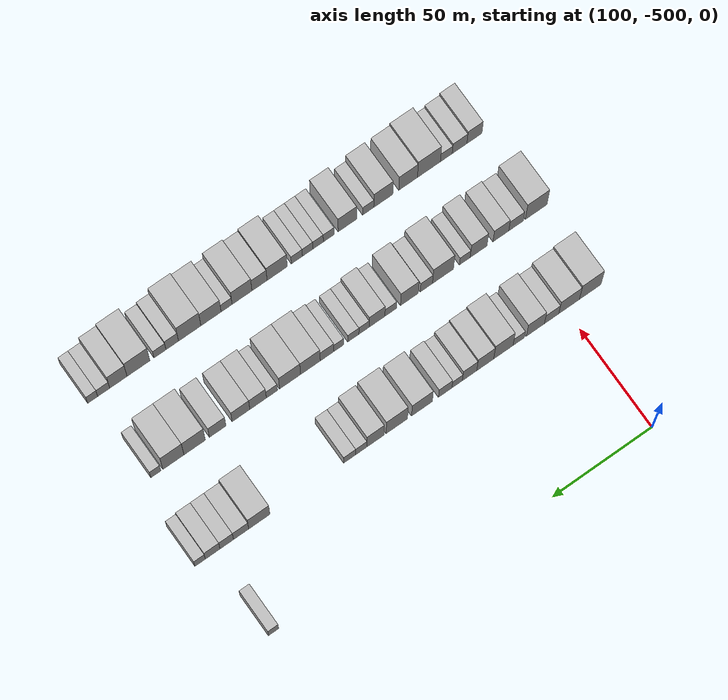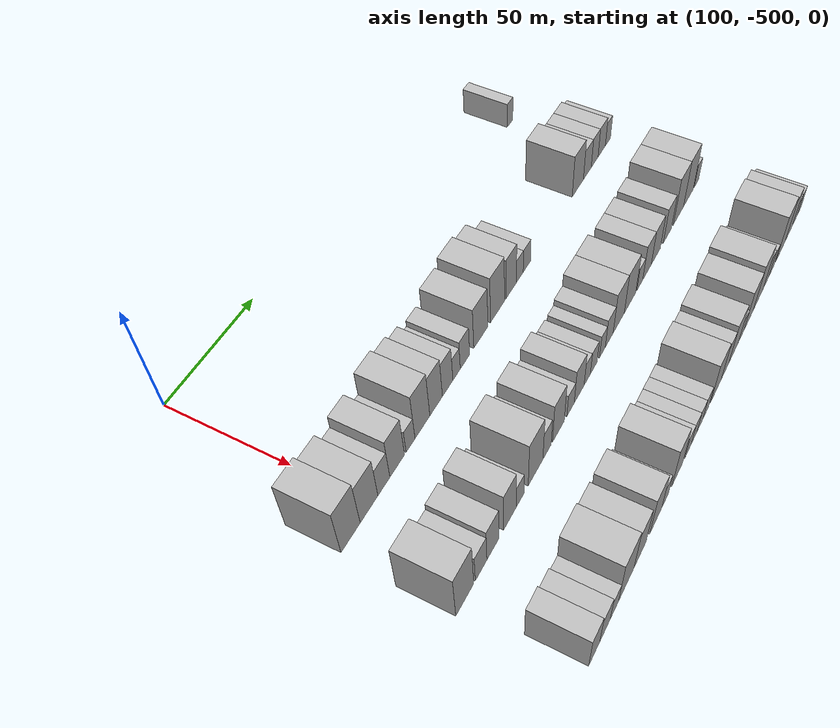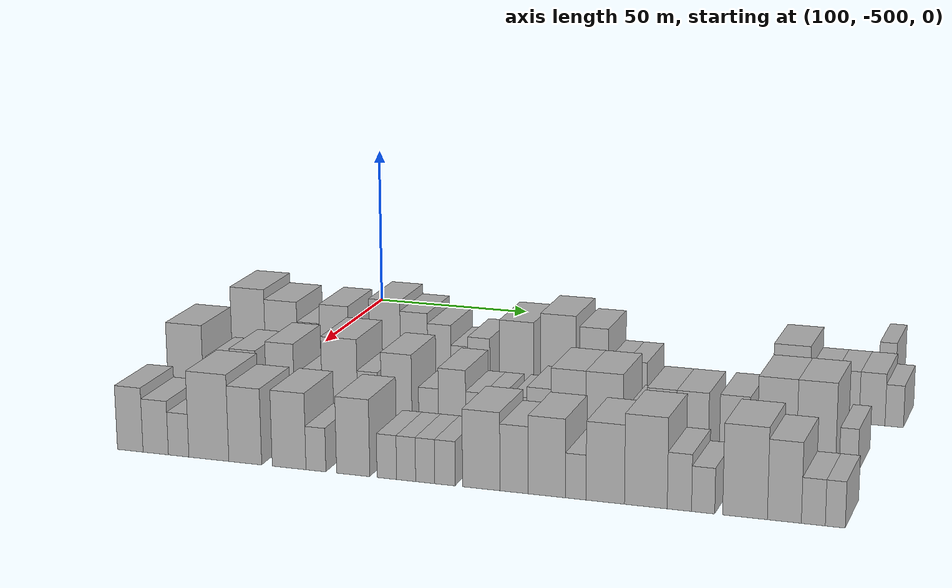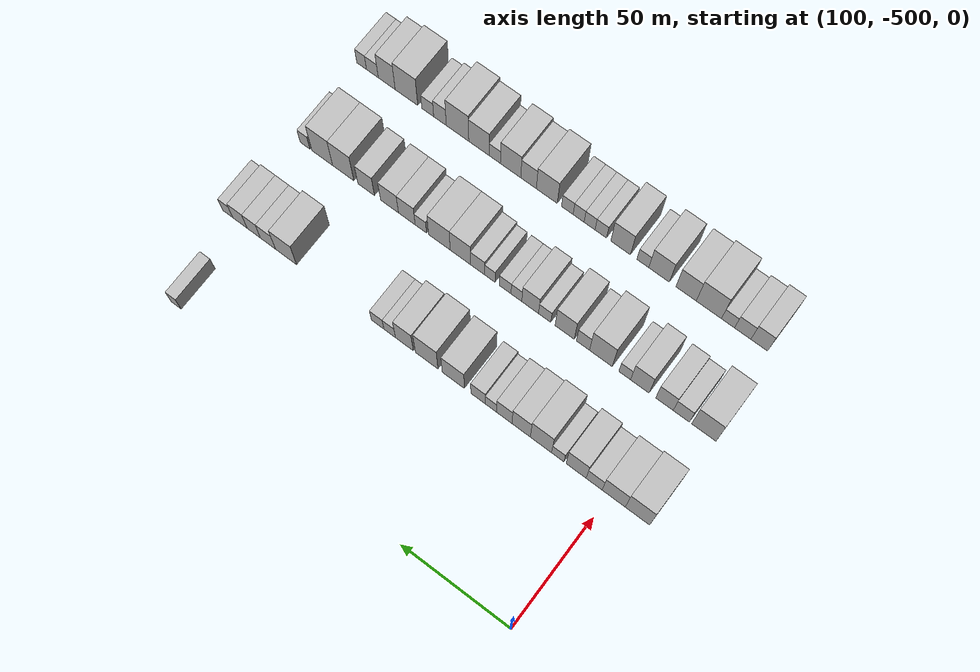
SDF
<sdf version="1.6">
 <world name="default">
  <model name="building_314">
   <static>1</static>
   <pose>130.0000 -326.8407 0 0.000000 0.000000 0.000000</pose>
   <link name="link">
    <pose>0 0 6.00 0 0 0</pose>
    <collision name="collision"><geometry><box><size>20.0000 4.9955 12.0000</size></box></geometry></collision>
    <visual name="visual">
     <cast_shadows>0</cast_shadows>
     <geometry><box><size>20.0000 4.9955 12.0000</size></box></geometry>
     <material>
      <script>
       <uri>model://HANNAS_wall/materials/scripts</uri>
       <uri>model://HANNAS_wall/materials/textures</uri>
       <name>vrc/HANNAS_wall</name>
      </script>
     </material>
    </visual>
   </link>
  </model>
  <model name="building_421">
   <static>1</static>
   <pose>170.0000 -512.4517 0 0.000000 0.000000 0.000000</pose>
   <link name="link">
    <pose>0 0 12.00 0 0 0</pose>
    <collision name="collision"><geometry><box><size>20.0000 10.9084 24.0000</size></box></geometry></collision>
    <visual name="visual">
     <cast_shadows>0</cast_shadows>
     <geometry><box><size>20.0000 10.9084 24.0000</size></box></geometry>
     <material>
      <script>
       <uri>model://HANNAS_wall/materials/scripts</uri>
       <uri>model://HANNAS_wall/materials/textures</uri>
       <name>vrc/HANNAS_wall</name>
      </script>
     </material>
    </visual>
   </link>
  </model>
  <model name="building_422">
   <static>1</static>
   <pose>170.0000 -501.8076 0 0.000000 0.000000 0.000000</pose>
   <link name="link">
    <pose>0 0 10.50 0 0 0</pose>
    <collision name="collision"><geometry><box><size>20.0000 10.3797 21.0000</size></box></geometry></collision>
    <visual name="visual">
     <cast_shadows>0</cast_shadows>
     <geometry><box><size>20.0000 10.3797 21.0000</size></box></geometry>
     <material>
      <script>
       <uri>model://HANNAS_wall/materials/scripts</uri>
       <uri>model://HANNAS_wall/materials/textures</uri>
       <name>vrc/HANNAS_wall</name>
      </script>
     </material>
    </visual>
   </link>
  </model>
  <model name="building_423">
   <static>1</static>
   <pose>170.0000 -493.0050 0 0.000000 0.000000 0.000000</pose>
   <link name="link">
    <pose>0 0 7.50 0 0 0</pose>
    <collision name="collision"><geometry><box><size>20.0000 7.2255 15.0000</size></box></geometry></collision>
    <visual name="visual">
     <cast_shadows>0</cast_shadows>
     <geometry><box><size>20.0000 7.2255 15.0000</size></box></geometry>
     <material>
      <script>
       <uri>model://HANNAS_wall/materials/scripts</uri>
       <uri>model://HANNAS_wall/materials/textures</uri>
       <name>vrc/HANNAS_wall</name>
      </script>
     </material>
    </visual>
   </link>
  </model>
  <model name="building_424">
   <static>1</static>
   <pose>170.0000 -484.8514 0 0.000000 0.000000 0.000000</pose>
   <link name="link">
    <pose>0 0 10.50 0 0 0</pose>
    <collision name="collision"><geometry><box><size>20.0000 9.0818 21.0000</size></box></geometry></collision>
    <visual name="visual">
     <cast_shadows>0</cast_shadows>
     <geometry><box><size>20.0000 9.0818 21.0000</size></box></geometry>
     <material>
      <script>
       <uri>model://HANNAS_wall/materials/scripts</uri>
       <uri>model://HANNAS_wall/materials/textures</uri>
       <name>vrc/HANNAS_wall</name>
      </script>
     </material>
    </visual>
   </link>
  </model>
  <model name="building_425">
   <static>1</static>
   <pose>170.0000 -476.4792 0 0.000000 0.000000 0.000000</pose>
   <link name="link">
    <pose>0 0 6.00 0 0 0</pose>
    <collision name="collision"><geometry><box><size>20.0000 5.6626 12.0000</size></box></geometry></collision>
    <visual name="visual">
     <cast_shadows>0</cast_shadows>
     <geometry><box><size>20.0000 5.6626 12.0000</size></box></geometry>
     <material>
      <script>
       <uri>model://HANNAS_wall/materials/scripts</uri>
       <uri>model://HANNAS_wall/materials/textures</uri>
       <name>vrc/HANNAS_wall</name>
      </script>
     </material>
    </visual>
   </link>
  </model>
  <model name="building_426">
   <static>1</static>
   <pose>170.0000 -468.8043 0 0.000000 0.000000 0.000000</pose>
   <link name="link">
    <pose>0 0 12.00 0 0 0</pose>
    <collision name="collision"><geometry><box><size>20.0000 9.6873 24.0000</size></box></geometry></collision>
    <visual name="visual">
     <cast_shadows>0</cast_shadows>
     <geometry><box><size>20.0000 9.6873 24.0000</size></box></geometry>
     <material>
      <script>
       <uri>model://HANNAS_wall/materials/scripts</uri>
       <uri>model://HANNAS_wall/materials/textures</uri>
       <name>vrc/HANNAS_wall</name>
      </script>
     </material>
    </visual>
   </link>
  </model>
  <model name="building_427">
   <static>1</static>
   <pose>170.0000 -459.7346 0 0.000000 0.000000 0.000000</pose>
   <link name="link">
    <pose>0 0 10.50 0 0 0</pose>
    <collision name="collision"><geometry><box><size>20.0000 8.4520 21.0000</size></box></geometry></collision>
    <visual name="visual">
     <cast_shadows>0</cast_shadows>
     <geometry><box><size>20.0000 8.4520 21.0000</size></box></geometry>
     <material>
      <script>
       <uri>model://HANNAS_wall/materials/scripts</uri>
       <uri>model://HANNAS_wall/materials/textures</uri>
       <name>vrc/HANNAS_wall</name>
      </script>
     </material>
    </visual>
   </link>
  </model>
  <model name="building_428">
   <static>1</static>
   <pose>170.0000 -451.9008 0 0.000000 0.000000 0.000000</pose>
   <link name="link">
    <pose>0 0 9.00 0 0 0</pose>
    <collision name="collision"><geometry><box><size>20.0000 7.2156 18.0000</size></box></geometry></collision>
    <visual name="visual">
     <cast_shadows>0</cast_shadows>
     <geometry><box><size>20.0000 7.2156 18.0000</size></box></geometry>
     <material>
      <script>
       <uri>model://HANNAS_wall/materials/scripts</uri>
       <uri>model://HANNAS_wall/materials/textures</uri>
       <name>vrc/HANNAS_wall</name>
      </script>
     </material>
    </visual>
   </link>
  </model>
  <model name="building_429">
   <static>1</static>
   <pose>170.0000 -445.7088 0 0.000000 0.000000 0.000000</pose>
   <link name="link">
    <pose>0 0 6.00 0 0 0</pose>
    <collision name="collision"><geometry><box><size>20.0000 5.1683 12.0000</size></box></geometry></collision>
    <visual name="visual">
     <cast_shadows>0</cast_shadows>
     <geometry><box><size>20.0000 5.1683 12.0000</size></box></geometry>
     <material>
      <script>
       <uri>model://HANNAS_wall/materials/scripts</uri>
       <uri>model://HANNAS_wall/materials/textures</uri>
       <name>vrc/HANNAS_wall</name>
      </script>
     </material>
    </visual>
   </link>
  </model>
  <model name="building_430">
   <static>1</static>
   <pose>170.0000 -439.7634 0 0.000000 0.000000 0.000000</pose>
   <link name="link">
    <pose>0 0 7.50 0 0 0</pose>
    <collision name="collision"><geometry><box><size>20.0000 6.7225 15.0000</size></box></geometry></collision>
    <visual name="visual">
     <cast_shadows>0</cast_shadows>
     <geometry><box><size>20.0000 6.7225 15.0000</size></box></geometry>
     <material>
      <script>
       <uri>model://HANNAS_wall/materials/scripts</uri>
       <uri>model://HANNAS_wall/materials/textures</uri>
       <name>vrc/HANNAS_wall</name>
      </script>
     </material>
    </visual>
   </link>
  </model>
  <model name="building_431">
   <static>1</static>
   <pose>170.0000 -428.2060 0 0.000000 0.000000 0.000000</pose>
   <link name="link">
    <pose>0 0 10.50 0 0 0</pose>
    <collision name="collision"><geometry><box><size>20.0000 10.3924 21.0000</size></box></geometry></collision>
    <visual name="visual">
     <cast_shadows>0</cast_shadows>
     <geometry><box><size>20.0000 10.3924 21.0000</size></box></geometry>
     <material>
      <script>
       <uri>model://HANNAS_wall/materials/scripts</uri>
       <uri>model://HANNAS_wall/materials/textures</uri>
       <name>vrc/HANNAS_wall</name>
      </script>
     </material>
    </visual>
   </link>
  </model>
  <model name="building_432">
   <static>1</static>
   <pose>170.0000 -415.6781 0 0.000000 0.000000 0.000000</pose>
   <link name="link">
    <pose>0 0 12.00 0 0 0</pose>
    <collision name="collision"><geometry><box><size>20.0000 10.6633 24.0000</size></box></geometry></collision>
    <visual name="visual">
     <cast_shadows>0</cast_shadows>
     <geometry><box><size>20.0000 10.6633 24.0000</size></box></geometry>
     <material>
      <script>
       <uri>model://HANNAS_wall/materials/scripts</uri>
       <uri>model://HANNAS_wall/materials/textures</uri>
       <name>vrc/HANNAS_wall</name>
      </script>
     </material>
    </visual>
   </link>
  </model>
  <model name="building_433">
   <static>1</static>
   <pose>170.0000 -405.1038 0 0.000000 0.000000 0.000000</pose>
   <link name="link">
    <pose>0 0 10.50 0 0 0</pose>
    <collision name="collision"><geometry><box><size>20.0000 8.4853 21.0000</size></box></geometry></collision>
    <visual name="visual">
     <cast_shadows>0</cast_shadows>
     <geometry><box><size>20.0000 8.4853 21.0000</size></box></geometry>
     <material>
      <script>
       <uri>model://HANNAS_wall/materials/scripts</uri>
       <uri>model://HANNAS_wall/materials/textures</uri>
       <name>vrc/HANNAS_wall</name>
      </script>
     </material>
    </visual>
   </link>
  </model>
  <model name="building_434">
   <static>1</static>
   <pose>170.0000 -398.1014 0 0.000000 0.000000 0.000000</pose>
   <link name="link">
    <pose>0 0 6.00 0 0 0</pose>
    <collision name="collision"><geometry><box><size>20.0000 5.5194 12.0000</size></box></geometry></collision>
    <visual name="visual">
     <cast_shadows>0</cast_shadows>
     <geometry><box><size>20.0000 5.5194 12.0000</size></box></geometry>
     <material>
      <script>
       <uri>model://HANNAS_wall/materials/scripts</uri>
       <uri>model://HANNAS_wall/materials/textures</uri>
       <name>vrc/HANNAS_wall</name>
      </script>
     </material>
    </visual>
   </link>
  </model>
  <model name="building_435">
   <static>1</static>
   <pose>170.0000 -392.3567 0 0.000000 0.000000 0.000000</pose>
   <link name="link">
    <pose>0 0 6.00 0 0 0</pose>
    <collision name="collision"><geometry><box><size>20.0000 5.9701 12.0000</size></box></geometry></collision>
    <visual name="visual">
     <cast_shadows>0</cast_shadows>
     <geometry><box><size>20.0000 5.9701 12.0000</size></box></geometry>
     <material>
      <script>
       <uri>model://HANNAS_wall/materials/scripts</uri>
       <uri>model://HANNAS_wall/materials/textures</uri>
       <name>vrc/HANNAS_wall</name>
      </script>
     </material>
    </visual>
   </link>
  </model>
  <model name="building_436">
   <static>1</static>
   <pose>170.0000 -347.8198 0 0.000000 0.000000 0.000000</pose>
   <link name="link">
    <pose>0 0 10.50 0 0 0</pose>
    <collision name="collision"><geometry><box><size>20.0000 10.3679 21.0000</size></box></geometry></collision>
    <visual name="visual">
     <cast_shadows>0</cast_shadows>
     <geometry><box><size>20.0000 10.3679 21.0000</size></box></geometry>
     <material>
      <script>
       <uri>model://HANNAS_wall/materials/scripts</uri>
       <uri>model://HANNAS_wall/materials/textures</uri>
       <name>vrc/HANNAS_wall</name>
      </script>
     </material>
    </visual>
   </link>
  </model>
  <model name="building_437">
   <static>1</static>
   <pose>170.0000 -338.9159 0 0.000000 0.000000 0.000000</pose>
   <link name="link">
    <pose>0 0 7.50 0 0 0</pose>
    <collision name="collision"><geometry><box><size>20.0000 7.4399 15.0000</size></box></geometry></collision>
    <visual name="visual">
     <cast_shadows>0</cast_shadows>
     <geometry><box><size>20.0000 7.4399 15.0000</size></box></geometry>
     <material>
      <script>
       <uri>model://HANNAS_wall/materials/scripts</uri>
       <uri>model://HANNAS_wall/materials/textures</uri>
       <name>vrc/HANNAS_wall</name>
      </script>
     </material>
    </visual>
   </link>
  </model>
  <model name="building_438">
   <static>1</static>
   <pose>170.0000 -331.8814 0 0.000000 0.000000 0.000000</pose>
   <link name="link">
    <pose>0 0 7.50 0 0 0</pose>
    <collision name="collision"><geometry><box><size>20.0000 6.6290 15.0000</size></box></geometry></collision>
    <visual name="visual">
     <cast_shadows>0</cast_shadows>
     <geometry><box><size>20.0000 6.6290 15.0000</size></box></geometry>
     <material>
      <script>
       <uri>model://HANNAS_wall/materials/scripts</uri>
       <uri>model://HANNAS_wall/materials/textures</uri>
       <name>vrc/HANNAS_wall</name>
      </script>
     </material>
    </visual>
   </link>
  </model>
  <model name="building_439">
   <static>1</static>
   <pose>170.0000 -324.9724 0 0.000000 0.000000 0.000000</pose>
   <link name="link">
    <pose>0 0 7.50 0 0 0</pose>
    <collision name="collision"><geometry><box><size>20.0000 7.1890 15.0000</size></box></geometry></collision>
    <visual name="visual">
     <cast_shadows>0</cast_shadows>
     <geometry><box><size>20.0000 7.1890 15.0000</size></box></geometry>
     <material>
      <script>
       <uri>model://HANNAS_wall/materials/scripts</uri>
       <uri>model://HANNAS_wall/materials/textures</uri>
       <name>vrc/HANNAS_wall</name>
      </script>
     </material>
    </visual>
   </link>
  </model>
  <model name="building_440">
   <static>1</static>
   <pose>170.0000 -318.8270 0 0.000000 0.000000 0.000000</pose>
   <link name="link">
    <pose>0 0 6.00 0 0 0</pose>
    <collision name="collision"><geometry><box><size>20.0000 5.1017 12.0000</size></box></geometry></collision>
    <visual name="visual">
     <cast_shadows>0</cast_shadows>
     <geometry><box><size>20.0000 5.1017 12.0000</size></box></geometry>
     <material>
      <script>
       <uri>model://HANNAS_wall/materials/scripts</uri>
       <uri>model://HANNAS_wall/materials/textures</uri>
       <name>vrc/HANNAS_wall</name>
      </script>
     </material>
    </visual>
   </link>
  </model>
  <model name="building_558">
   <static>1</static>
   <pose>210.0000 -514.0894 0 0.000000 0.000000 0.000000</pose>
   <link name="link">
    <pose>0 0 12.00 0 0 0</pose>
    <collision name="collision"><geometry><box><size>20.0000 10.9681 24.0000</size></box></geometry></collision>
    <visual name="visual">
     <cast_shadows>0</cast_shadows>
     <geometry><box><size>20.0000 10.9681 24.0000</size></box></geometry>
     <material>
      <script>
       <uri>model://HANNAS_wall/materials/scripts</uri>
       <uri>model://HANNAS_wall/materials/textures</uri>
       <name>vrc/HANNAS_wall</name>
      </script>
     </material>
    </visual>
   </link>
  </model>
  <model name="building_559">
   <static>1</static>
   <pose>210.0000 -503.9419 0 0.000000 0.000000 0.000000</pose>
   <link name="link">
    <pose>0 0 7.50 0 0 0</pose>
    <collision name="collision"><geometry><box><size>20.0000 7.3269 15.0000</size></box></geometry></collision>
    <visual name="visual">
     <cast_shadows>0</cast_shadows>
     <geometry><box><size>20.0000 7.3269 15.0000</size></box></geometry>
     <material>
      <script>
       <uri>model://HANNAS_wall/materials/scripts</uri>
       <uri>model://HANNAS_wall/materials/textures</uri>
       <name>vrc/HANNAS_wall</name>
      </script>
     </material>
    </visual>
   </link>
  </model>
  <model name="building_560">
   <static>1</static>
   <pose>210.0000 -496.3014 0 0.000000 0.000000 0.000000</pose>
   <link name="link">
    <pose>0 0 9.00 0 0 0</pose>
    <collision name="collision"><geometry><box><size>20.0000 7.9541 18.0000</size></box></geometry></collision>
    <visual name="visual">
     <cast_shadows>0</cast_shadows>
     <geometry><box><size>20.0000 7.9541 18.0000</size></box></geometry>
     <material>
      <script>
       <uri>model://HANNAS_wall/materials/scripts</uri>
       <uri>model://HANNAS_wall/materials/textures</uri>
       <name>vrc/HANNAS_wall</name>
      </script>
     </material>
    </visual>
   </link>
  </model>
  <model name="building_561">
   <static>1</static>
   <pose>210.0000 -485.0858 0 0.000000 0.000000 0.000000</pose>
   <link name="link">
    <pose>0 0 10.50 0 0 0</pose>
    <collision name="collision"><geometry><box><size>20.0000 8.4770 21.0000</size></box></geometry></collision>
    <visual name="visual">
     <cast_shadows>0</cast_shadows>
     <geometry><box><size>20.0000 8.4770 21.0000</size></box></geometry>
     <material>
      <script>
       <uri>model://HANNAS_wall/materials/scripts</uri>
       <uri>model://HANNAS_wall/materials/textures</uri>
       <name>vrc/HANNAS_wall</name>
      </script>
     </material>
    </visual>
   </link>
  </model>
  <model name="building_562">
   <static>1</static>
   <pose>210.0000 -478.1518 0 0.000000 0.000000 0.000000</pose>
   <link name="link">
    <pose>0 0 6.00 0 0 0</pose>
    <collision name="collision"><geometry><box><size>20.0000 5.3909 12.0000</size></box></geometry></collision>
    <visual name="visual">
     <cast_shadows>0</cast_shadows>
     <geometry><box><size>20.0000 5.3909 12.0000</size></box></geometry>
     <material>
      <script>
       <uri>model://HANNAS_wall/materials/scripts</uri>
       <uri>model://HANNAS_wall/materials/textures</uri>
       <name>vrc/HANNAS_wall</name>
      </script>
     </material>
    </visual>
   </link>
  </model>
  <model name="building_563">
   <static>1</static>
   <pose>210.0000 -467.1893 0 0.000000 0.000000 0.000000</pose>
   <link name="link">
    <pose>0 0 12.00 0 0 0</pose>
    <collision name="collision"><geometry><box><size>20.0000 10.5341 24.0000</size></box></geometry></collision>
    <visual name="visual">
     <cast_shadows>0</cast_shadows>
     <geometry><box><size>20.0000 10.5341 24.0000</size></box></geometry>
     <material>
      <script>
       <uri>model://HANNAS_wall/materials/scripts</uri>
       <uri>model://HANNAS_wall/materials/textures</uri>
       <name>vrc/HANNAS_wall</name>
      </script>
     </material>
    </visual>
   </link>
  </model>
  <model name="building_564">
   <static>1</static>
   <pose>210.0000 -458.8881 0 0.000000 0.000000 0.000000</pose>
   <link name="link">
    <pose>0 0 7.50 0 0 0</pose>
    <collision name="collision"><geometry><box><size>20.0000 6.0684 15.0000</size></box></geometry></collision>
    <visual name="visual">
     <cast_shadows>0</cast_shadows>
     <geometry><box><size>20.0000 6.0684 15.0000</size></box></geometry>
     <material>
      <script>
       <uri>model://HANNAS_wall/materials/scripts</uri>
       <uri>model://HANNAS_wall/materials/textures</uri>
       <name>vrc/HANNAS_wall</name>
      </script>
     </material>
    </visual>
   </link>
  </model>
  <model name="building_565">
   <static>1</static>
   <pose>210.0000 -450.3761 0 0.000000 0.000000 0.000000</pose>
   <link name="link">
    <pose>0 0 10.50 0 0 0</pose>
    <collision name="collision"><geometry><box><size>20.0000 8.9555 21.0000</size></box></geometry></collision>
    <visual name="visual">
     <cast_shadows>0</cast_shadows>
     <geometry><box><size>20.0000 8.9555 21.0000</size></box></geometry>
     <material>
      <script>
       <uri>model://HANNAS_wall/materials/scripts</uri>
       <uri>model://HANNAS_wall/materials/textures</uri>
       <name>vrc/HANNAS_wall</name>
      </script>
     </material>
    </visual>
   </link>
  </model>
  <model name="building_566">
   <static>1</static>
   <pose>210.0000 -441.0255 0 0.000000 0.000000 0.000000</pose>
   <link name="link">
    <pose>0 0 6.00 0 0 0</pose>
    <collision name="collision"><geometry><box><size>20.0000 5.7458 12.0000</size></box></geometry></collision>
    <visual name="visual">
     <cast_shadows>0</cast_shadows>
     <geometry><box><size>20.0000 5.7458 12.0000</size></box></geometry>
     <material>
      <script>
       <uri>model://HANNAS_wall/materials/scripts</uri>
       <uri>model://HANNAS_wall/materials/textures</uri>
       <name>vrc/HANNAS_wall</name>
      </script>
     </material>
    </visual>
   </link>
  </model>
  <model name="building_567">
   <static>1</static>
   <pose>210.0000 -434.2075 0 0.000000 0.000000 0.000000</pose>
   <link name="link">
    <pose>0 0 9.00 0 0 0</pose>
    <collision name="collision"><geometry><box><size>20.0000 7.8900 18.0000</size></box></geometry></collision>
    <visual name="visual">
     <cast_shadows>0</cast_shadows>
     <geometry><box><size>20.0000 7.8900 18.0000</size></box></geometry>
     <material>
      <script>
       <uri>model://HANNAS_wall/materials/scripts</uri>
       <uri>model://HANNAS_wall/materials/textures</uri>
       <name>vrc/HANNAS_wall</name>
      </script>
     </material>
    </visual>
   </link>
  </model>
  <model name="building_568">
   <static>1</static>
   <pose>210.0000 -427.7118 0 0.000000 0.000000 0.000000</pose>
   <link name="link">
    <pose>0 0 6.00 0 0 0</pose>
    <collision name="collision"><geometry><box><size>20.0000 5.1014 12.0000</size></box></geometry></collision>
    <visual name="visual">
     <cast_shadows>0</cast_shadows>
     <geometry><box><size>20.0000 5.1014 12.0000</size></box></geometry>
     <material>
      <script>
       <uri>model://HANNAS_wall/materials/scripts</uri>
       <uri>model://HANNAS_wall/materials/textures</uri>
       <name>vrc/HANNAS_wall</name>
      </script>
     </material>
    </visual>
   </link>
  </model>
  <model name="building_569">
   <static>1</static>
   <pose>210.0000 -422.3835 0 0.000000 0.000000 0.000000</pose>
   <link name="link">
    <pose>0 0 6.00 0 0 0</pose>
    <collision name="collision"><geometry><box><size>20.0000 5.5552 12.0000</size></box></geometry></collision>
    <visual name="visual">
     <cast_shadows>0</cast_shadows>
     <geometry><box><size>20.0000 5.5552 12.0000</size></box></geometry>
     <material>
      <script>
       <uri>model://HANNAS_wall/materials/scripts</uri>
       <uri>model://HANNAS_wall/materials/textures</uri>
       <name>vrc/HANNAS_wall</name>
      </script>
     </material>
    </visual>
   </link>
  </model>
  <model name="building_570">
   <static>1</static>
   <pose>210.0000 -415.1669 0 0.000000 0.000000 0.000000</pose>
   <link name="link">
    <pose>0 0 6.00 0 0 0</pose>
    <collision name="collision"><geometry><box><size>20.0000 4.8779 12.0000</size></box></geometry></collision>
    <visual name="visual">
     <cast_shadows>0</cast_shadows>
     <geometry><box><size>20.0000 4.8779 12.0000</size></box></geometry>
     <material>
      <script>
       <uri>model://HANNAS_wall/materials/scripts</uri>
       <uri>model://HANNAS_wall/materials/textures</uri>
       <name>vrc/HANNAS_wall</name>
      </script>
     </material>
    </visual>
   </link>
  </model>
  <model name="building_571">
   <static>1</static>
   <pose>210.0000 -409.3403 0 0.000000 0.000000 0.000000</pose>
   <link name="link">
    <pose>0 0 7.50 0 0 0</pose>
    <collision name="collision"><geometry><box><size>20.0000 6.7753 15.0000</size></box></geometry></collision>
    <visual name="visual">
     <cast_shadows>0</cast_shadows>
     <geometry><box><size>20.0000 6.7753 15.0000</size></box></geometry>
     <material>
      <script>
       <uri>model://HANNAS_wall/materials/scripts</uri>
       <uri>model://HANNAS_wall/materials/textures</uri>
       <name>vrc/HANNAS_wall</name>
      </script>
     </material>
    </visual>
   </link>
  </model>
  <model name="building_572">
   <static>1</static>
   <pose>210.0000 -401.0487 0 0.000000 0.000000 0.000000</pose>
   <link name="link">
    <pose>0 0 10.50 0 0 0</pose>
    <collision name="collision"><geometry><box><size>20.0000 9.8080 21.0000</size></box></geometry></collision>
    <visual name="visual">
     <cast_shadows>0</cast_shadows>
     <geometry><box><size>20.0000 9.8080 21.0000</size></box></geometry>
     <material>
      <script>
       <uri>model://HANNAS_wall/materials/scripts</uri>
       <uri>model://HANNAS_wall/materials/textures</uri>
       <name>vrc/HANNAS_wall</name>
      </script>
     </material>
    </visual>
   </link>
  </model>
  <model name="building_573">
   <static>1</static>
   <pose>210.0000 -390.9352 0 0.000000 0.000000 0.000000</pose>
   <link name="link">
    <pose>0 0 10.50 0 0 0</pose>
    <collision name="collision"><geometry><box><size>20.0000 10.4190 21.0000</size></box></geometry></collision>
    <visual name="visual">
     <cast_shadows>0</cast_shadows>
     <geometry><box><size>20.0000 10.4190 21.0000</size></box></geometry>
     <material>
      <script>
       <uri>model://HANNAS_wall/materials/scripts</uri>
       <uri>model://HANNAS_wall/materials/textures</uri>
       <name>vrc/HANNAS_wall</name>
      </script>
     </material>
    </visual>
   </link>
  </model>
  <model name="building_574">
   <static>1</static>
   <pose>210.0000 -381.9679 0 0.000000 0.000000 0.000000</pose>
   <link name="link">
    <pose>0 0 6.00 0 0 0</pose>
    <collision name="collision"><geometry><box><size>20.0000 5.5154 12.0000</size></box></geometry></collision>
    <visual name="visual">
     <cast_shadows>0</cast_shadows>
     <geometry><box><size>20.0000 5.5154 12.0000</size></box></geometry>
     <material>
      <script>
       <uri>model://HANNAS_wall/materials/scripts</uri>
       <uri>model://HANNAS_wall/materials/textures</uri>
       <name>vrc/HANNAS_wall</name>
      </script>
     </material>
    </visual>
   </link>
  </model>
  <model name="building_575">
   <static>1</static>
   <pose>210.0000 -375.1394 0 0.000000 0.000000 0.000000</pose>
   <link name="link">
    <pose>0 0 9.00 0 0 0</pose>
    <collision name="collision"><geometry><box><size>20.0000 8.1417 18.0000</size></box></geometry></collision>
    <visual name="visual">
     <cast_shadows>0</cast_shadows>
     <geometry><box><size>20.0000 8.1417 18.0000</size></box></geometry>
     <material>
      <script>
       <uri>model://HANNAS_wall/materials/scripts</uri>
       <uri>model://HANNAS_wall/materials/textures</uri>
       <name>vrc/HANNAS_wall</name>
      </script>
     </material>
    </visual>
   </link>
  </model>
  <model name="building_576">
   <static>1</static>
   <pose>210.0000 -366.6848 0 0.000000 0.000000 0.000000</pose>
   <link name="link">
    <pose>0 0 9.00 0 0 0</pose>
    <collision name="collision"><geometry><box><size>20.0000 8.7675 18.0000</size></box></geometry></collision>
    <visual name="visual">
     <cast_shadows>0</cast_shadows>
     <geometry><box><size>20.0000 8.7675 18.0000</size></box></geometry>
     <material>
      <script>
       <uri>model://HANNAS_wall/materials/scripts</uri>
       <uri>model://HANNAS_wall/materials/textures</uri>
       <name>vrc/HANNAS_wall</name>
      </script>
     </material>
    </visual>
   </link>
  </model>
  <model name="building_577">
   <static>1</static>
   <pose>210.0000 -355.2131 0 0.000000 0.000000 0.000000</pose>
   <link name="link">
    <pose>0 0 9.00 0 0 0</pose>
    <collision name="collision"><geometry><box><size>20.0000 8.1759 18.0000</size></box></geometry></collision>
    <visual name="visual">
     <cast_shadows>0</cast_shadows>
     <geometry><box><size>20.0000 8.1759 18.0000</size></box></geometry>
     <material>
      <script>
       <uri>model://HANNAS_wall/materials/scripts</uri>
       <uri>model://HANNAS_wall/materials/textures</uri>
       <name>vrc/HANNAS_wall</name>
      </script>
     </material>
    </visual>
   </link>
  </model>
  <model name="building_578">
   <static>1</static>
   <pose>210.0000 -343.8769 0 0.000000 0.000000 0.000000</pose>
   <link name="link">
    <pose>0 0 12.00 0 0 0</pose>
    <collision name="collision"><geometry><box><size>20.0000 10.4966 24.0000</size></box></geometry></collision>
    <visual name="visual">
     <cast_shadows>0</cast_shadows>
     <geometry><box><size>20.0000 10.4966 24.0000</size></box></geometry>
     <material>
      <script>
       <uri>model://HANNAS_wall/materials/scripts</uri>
       <uri>model://HANNAS_wall/materials/textures</uri>
       <name>vrc/HANNAS_wall</name>
      </script>
     </material>
    </visual>
   </link>
  </model>
  <model name="building_579">
   <static>1</static>
   <pose>210.0000 -333.4382 0 0.000000 0.000000 0.000000</pose>
   <link name="link">
    <pose>0 0 12.00 0 0 0</pose>
    <collision name="collision"><geometry><box><size>20.0000 10.3808 24.0000</size></box></geometry></collision>
    <visual name="visual">
     <cast_shadows>0</cast_shadows>
     <geometry><box><size>20.0000 10.3808 24.0000</size></box></geometry>
     <material>
      <script>
       <uri>model://HANNAS_wall/materials/scripts</uri>
       <uri>model://HANNAS_wall/materials/textures</uri>
       <name>vrc/HANNAS_wall</name>
      </script>
     </material>
    </visual>
   </link>
  </model>
  <model name="building_580">
   <static>1</static>
   <pose>210.0000 -324.8013 0 0.000000 0.000000 0.000000</pose>
   <link name="link">
    <pose>0 0 6.00 0 0 0</pose>
    <collision name="collision"><geometry><box><size>20.0000 4.8931 12.0000</size></box></geometry></collision>
    <visual name="visual">
     <cast_shadows>0</cast_shadows>
     <geometry><box><size>20.0000 4.8931 12.0000</size></box></geometry>
     <material>
      <script>
       <uri>model://HANNAS_wall/materials/scripts</uri>
       <uri>model://HANNAS_wall/materials/textures</uri>
       <name>vrc/HANNAS_wall</name>
      </script>
     </material>
    </visual>
   </link>
  </model>
  <model name="building_695">
   <static>1</static>
   <pose>250.0000 -511.6537 0 0.000000 0.000000 0.000000</pose>
   <link name="link">
    <pose>0 0 9.00 0 0 0</pose>
    <collision name="collision"><geometry><box><size>20.0000 7.5714 18.0000</size></box></geometry></collision>
    <visual name="visual">
     <cast_shadows>0</cast_shadows>
     <geometry><box><size>20.0000 7.5714 18.0000</size></box></geometry>
     <material>
      <script>
       <uri>model://HANNAS_wall/materials/scripts</uri>
       <uri>model://HANNAS_wall/materials/textures</uri>
       <name>vrc/HANNAS_wall</name>
      </script>
     </material>
    </visual>
   </link>
  </model>
  <model name="building_696">
   <static>1</static>
   <pose>250.0000 -504.1458 0 0.000000 0.000000 0.000000</pose>
   <link name="link">
    <pose>0 0 7.50 0 0 0</pose>
    <collision name="collision"><geometry><box><size>20.0000 7.4443 15.0000</size></box></geometry></collision>
    <visual name="visual">
     <cast_shadows>0</cast_shadows>
     <geometry><box><size>20.0000 7.4443 15.0000</size></box></geometry>
     <material>
      <script>
       <uri>model://HANNAS_wall/materials/scripts</uri>
       <uri>model://HANNAS_wall/materials/textures</uri>
       <name>vrc/HANNAS_wall</name>
      </script>
     </material>
    </visual>
   </link>
  </model>
  <model name="building_697">
   <static>1</static>
   <pose>250.0000 -497.4318 0 0.000000 0.000000 0.000000</pose>
   <link name="link">
    <pose>0 0 6.00 0 0 0</pose>
    <collision name="collision"><geometry><box><size>20.0000 5.9838 12.0000</size></box></geometry></collision>
    <visual name="visual">
     <cast_shadows>0</cast_shadows>
     <geometry><box><size>20.0000 5.9838 12.0000</size></box></geometry>
     <material>
      <script>
       <uri>model://HANNAS_wall/materials/scripts</uri>
       <uri>model://HANNAS_wall/materials/textures</uri>
       <name>vrc/HANNAS_wall</name>
      </script>
     </material>
    </visual>
   </link>
  </model>
  <model name="building_698">
   <static>1</static>
   <pose>250.0000 -488.6560 0 0.000000 0.000000 0.000000</pose>
   <link name="link">
    <pose>0 0 12.00 0 0 0</pose>
    <collision name="collision"><geometry><box><size>20.0000 11.5678 24.0000</size></box></geometry></collision>
    <visual name="visual">
     <cast_shadows>0</cast_shadows>
     <geometry><box><size>20.0000 11.5678 24.0000</size></box></geometry>
     <material>
      <script>
       <uri>model://HANNAS_wall/materials/scripts</uri>
       <uri>model://HANNAS_wall/materials/textures</uri>
       <name>vrc/HANNAS_wall</name>
      </script>
     </material>
    </visual>
   </link>
  </model>
  <model name="building_699">
   <static>1</static>
   <pose>250.0000 -478.1642 0 0.000000 0.000000 0.000000</pose>
   <link name="link">
    <pose>0 0 10.50 0 0 0</pose>
    <collision name="collision"><geometry><box><size>20.0000 9.4158 21.0000</size></box></geometry></collision>
    <visual name="visual">
     <cast_shadows>0</cast_shadows>
     <geometry><box><size>20.0000 9.4158 21.0000</size></box></geometry>
     <material>
      <script>
       <uri>model://HANNAS_wall/materials/scripts</uri>
       <uri>model://HANNAS_wall/materials/textures</uri>
       <name>vrc/HANNAS_wall</name>
      </script>
     </material>
    </visual>
   </link>
  </model>
  <model name="building_700">
   <static>1</static>
   <pose>250.0000 -465.6676 0 0.000000 0.000000 0.000000</pose>
   <link name="link">
    <pose>0 0 10.50 0 0 0</pose>
    <collision name="collision"><geometry><box><size>20.0000 9.5773 21.0000</size></box></geometry></collision>
    <visual name="visual">
     <cast_shadows>0</cast_shadows>
     <geometry><box><size>20.0000 9.5773 21.0000</size></box></geometry>
     <material>
      <script>
       <uri>model://HANNAS_wall/materials/scripts</uri>
       <uri>model://HANNAS_wall/materials/textures</uri>
       <name>vrc/HANNAS_wall</name>
      </script>
     </material>
    </visual>
   </link>
  </model>
  <model name="building_701">
   <static>1</static>
   <pose>250.0000 -458.0785 0 0.000000 0.000000 0.000000</pose>
   <link name="link">
    <pose>0 0 6.00 0 0 0</pose>
    <collision name="collision"><geometry><box><size>20.0000 5.6009 12.0000</size></box></geometry></collision>
    <visual name="visual">
     <cast_shadows>0</cast_shadows>
     <geometry><box><size>20.0000 5.6009 12.0000</size></box></geometry>
     <material>
      <script>
       <uri>model://HANNAS_wall/materials/scripts</uri>
       <uri>model://HANNAS_wall/materials/textures</uri>
       <name>vrc/HANNAS_wall</name>
      </script>
     </material>
    </visual>
   </link>
  </model>
  <model name="building_702">
   <static>1</static>
   <pose>250.0000 -447.6418 0 0.000000 0.000000 0.000000</pose>
   <link name="link">
    <pose>0 0 10.50 0 0 0</pose>
    <collision name="collision"><geometry><box><size>20.0000 9.2725 21.0000</size></box></geometry></collision>
    <visual name="visual">
     <cast_shadows>0</cast_shadows>
     <geometry><box><size>20.0000 9.2725 21.0000</size></box></geometry>
     <material>
      <script>
       <uri>model://HANNAS_wall/materials/scripts</uri>
       <uri>model://HANNAS_wall/materials/textures</uri>
       <name>vrc/HANNAS_wall</name>
      </script>
     </material>
    </visual>
   </link>
  </model>
  <model name="building_703">
   <static>1</static>
   <pose>250.0000 -438.3004 0 0.000000 0.000000 0.000000</pose>
   <link name="link">
    <pose>0 0 6.00 0 0 0</pose>
    <collision name="collision"><geometry><box><size>20.0000 5.4104 12.0000</size></box></geometry></collision>
    <visual name="visual">
     <cast_shadows>0</cast_shadows>
     <geometry><box><size>20.0000 5.4104 12.0000</size></box></geometry>
     <material>
      <script>
       <uri>model://HANNAS_wall/materials/scripts</uri>
       <uri>model://HANNAS_wall/materials/textures</uri>
       <name>vrc/HANNAS_wall</name>
      </script>
     </material>
    </visual>
   </link>
  </model>
  <model name="building_704">
   <static>1</static>
   <pose>250.0000 -432.9865 0 0.000000 0.000000 0.000000</pose>
   <link name="link">
    <pose>0 0 6.00 0 0 0</pose>
    <collision name="collision"><geometry><box><size>20.0000 5.2174 12.0000</size></box></geometry></collision>
    <visual name="visual">
     <cast_shadows>0</cast_shadows>
     <geometry><box><size>20.0000 5.2174 12.0000</size></box></geometry>
     <material>
      <script>
       <uri>model://HANNAS_wall/materials/scripts</uri>
       <uri>model://HANNAS_wall/materials/textures</uri>
       <name>vrc/HANNAS_wall</name>
      </script>
     </material>
    </visual>
   </link>
  </model>
  <model name="building_705">
   <static>1</static>
   <pose>250.0000 -427.7586 0 0.000000 0.000000 0.000000</pose>
   <link name="link">
    <pose>0 0 6.00 0 0 0</pose>
    <collision name="collision"><geometry><box><size>20.0000 5.2383 12.0000</size></box></geometry></collision>
    <visual name="visual">
     <cast_shadows>0</cast_shadows>
     <geometry><box><size>20.0000 5.2383 12.0000</size></box></geometry>
     <material>
      <script>
       <uri>model://HANNAS_wall/materials/scripts</uri>
       <uri>model://HANNAS_wall/materials/textures</uri>
       <name>vrc/HANNAS_wall</name>
      </script>
     </material>
    </visual>
   </link>
  </model>
  <model name="building_706">
   <static>1</static>
   <pose>250.0000 -422.3633 0 0.000000 0.000000 0.000000</pose>
   <link name="link">
    <pose>0 0 6.00 0 0 0</pose>
    <collision name="collision"><geometry><box><size>20.0000 5.5522 12.0000</size></box></geometry></collision>
    <visual name="visual">
     <cast_shadows>0</cast_shadows>
     <geometry><box><size>20.0000 5.5522 12.0000</size></box></geometry>
     <material>
      <script>
       <uri>model://HANNAS_wall/materials/scripts</uri>
       <uri>model://HANNAS_wall/materials/textures</uri>
       <name>vrc/HANNAS_wall</name>
      </script>
     </material>
    </visual>
   </link>
  </model>
  <model name="building_707">
   <static>1</static>
   <pose>250.0000 -412.5528 0 0.000000 0.000000 0.000000</pose>
   <link name="link">
    <pose>0 0 10.50 0 0 0</pose>
    <collision name="collision"><geometry><box><size>20.0000 10.0689 21.0000</size></box></geometry></collision>
    <visual name="visual">
     <cast_shadows>0</cast_shadows>
     <geometry><box><size>20.0000 10.0689 21.0000</size></box></geometry>
     <material>
      <script>
       <uri>model://HANNAS_wall/materials/scripts</uri>
       <uri>model://HANNAS_wall/materials/textures</uri>
       <name>vrc/HANNAS_wall</name>
      </script>
     </material>
    </visual>
   </link>
  </model>
  <model name="building_708">
   <static>1</static>
   <pose>250.0000 -403.7532 0 0.000000 0.000000 0.000000</pose>
   <link name="link">
    <pose>0 0 9.00 0 0 0</pose>
    <collision name="collision"><geometry><box><size>20.0000 7.5305 18.0000</size></box></geometry></collision>
    <visual name="visual">
     <cast_shadows>0</cast_shadows>
     <geometry><box><size>20.0000 7.5305 18.0000</size></box></geometry>
     <material>
      <script>
       <uri>model://HANNAS_wall/materials/scripts</uri>
       <uri>model://HANNAS_wall/materials/textures</uri>
       <name>vrc/HANNAS_wall</name>
      </script>
     </material>
    </visual>
   </link>
  </model>
  <model name="building_709">
   <static>1</static>
   <pose>250.0000 -395.0612 0 0.000000 0.000000 0.000000</pose>
   <link name="link">
    <pose>0 0 10.50 0 0 0</pose>
    <collision name="collision"><geometry><box><size>20.0000 9.8534 21.0000</size></box></geometry></collision>
    <visual name="visual">
     <cast_shadows>0</cast_shadows>
     <geometry><box><size>20.0000 9.8534 21.0000</size></box></geometry>
     <material>
      <script>
       <uri>model://HANNAS_wall/materials/scripts</uri>
       <uri>model://HANNAS_wall/materials/textures</uri>
       <name>vrc/HANNAS_wall</name>
      </script>
     </material>
    </visual>
   </link>
  </model>
  <model name="building_710">
   <static>1</static>
   <pose>250.0000 -387.4020 0 0.000000 0.000000 0.000000</pose>
   <link name="link">
    <pose>0 0 6.00 0 0 0</pose>
    <collision name="collision"><geometry><box><size>20.0000 5.4650 12.0000</size></box></geometry></collision>
    <visual name="visual">
     <cast_shadows>0</cast_shadows>
     <geometry><box><size>20.0000 5.4650 12.0000</size></box></geometry>
     <material>
      <script>
       <uri>model://HANNAS_wall/materials/scripts</uri>
       <uri>model://HANNAS_wall/materials/textures</uri>
       <name>vrc/HANNAS_wall</name>
      </script>
     </material>
    </visual>
   </link>
  </model>
  <model name="building_711">
   <static>1</static>
   <pose>250.0000 -379.6564 0 0.000000 0.000000 0.000000</pose>
   <link name="link">
    <pose>0 0 10.50 0 0 0</pose>
    <collision name="collision"><geometry><box><size>20.0000 10.0262 21.0000</size></box></geometry></collision>
    <visual name="visual">
     <cast_shadows>0</cast_shadows>
     <geometry><box><size>20.0000 10.0262 21.0000</size></box></geometry>
     <material>
      <script>
       <uri>model://HANNAS_wall/materials/scripts</uri>
       <uri>model://HANNAS_wall/materials/textures</uri>
       <name>vrc/HANNAS_wall</name>
      </script>
     </material>
    </visual>
   </link>
  </model>
  <model name="building_712">
   <static>1</static>
   <pose>250.0000 -369.1136 0 0.000000 0.000000 0.000000</pose>
   <link name="link">
    <pose>0 0 12.00 0 0 0</pose>
    <collision name="collision"><geometry><box><size>20.0000 11.0596 24.0000</size></box></geometry></collision>
    <visual name="visual">
     <cast_shadows>0</cast_shadows>
     <geometry><box><size>20.0000 11.0596 24.0000</size></box></geometry>
     <material>
      <script>
       <uri>model://HANNAS_wall/materials/scripts</uri>
       <uri>model://HANNAS_wall/materials/textures</uri>
       <name>vrc/HANNAS_wall</name>
      </script>
     </material>
    </visual>
   </link>
  </model>
  <model name="building_713">
   <static>1</static>
   <pose>250.0000 -360.4707 0 0.000000 0.000000 0.000000</pose>
   <link name="link">
    <pose>0 0 7.50 0 0 0</pose>
    <collision name="collision"><geometry><box><size>20.0000 6.2262 15.0000</size></box></geometry></collision>
    <visual name="visual">
     <cast_shadows>0</cast_shadows>
     <geometry><box><size>20.0000 6.2262 15.0000</size></box></geometry>
     <material>
      <script>
       <uri>model://HANNAS_wall/materials/scripts</uri>
       <uri>model://HANNAS_wall/materials/textures</uri>
       <name>vrc/HANNAS_wall</name>
      </script>
     </material>
    </visual>
   </link>
  </model>
  <model name="building_714">
   <static>1</static>
   <pose>250.0000 -354.4062 0 0.000000 0.000000 0.000000</pose>
   <link name="link">
    <pose>0 0 6.00 0 0 0</pose>
    <collision name="collision"><geometry><box><size>20.0000 5.9029 12.0000</size></box></geometry></collision>
    <visual name="visual">
     <cast_shadows>0</cast_shadows>
     <geometry><box><size>20.0000 5.9029 12.0000</size></box></geometry>
     <material>
      <script>
       <uri>model://HANNAS_wall/materials/scripts</uri>
       <uri>model://HANNAS_wall/materials/textures</uri>
       <name>vrc/HANNAS_wall</name>
      </script>
     </material>
    </visual>
   </link>
  </model>
  <model name="building_715">
   <static>1</static>
   <pose>250.0000 -343.8169 0 0.000000 0.000000 0.000000</pose>
   <link name="link">
    <pose>0 0 12.00 0 0 0</pose>
    <collision name="collision"><geometry><box><size>20.0000 11.2757 24.0000</size></box></geometry></collision>
    <visual name="visual">
     <cast_shadows>0</cast_shadows>
     <geometry><box><size>20.0000 11.2757 24.0000</size></box></geometry>
     <material>
      <script>
       <uri>model://HANNAS_wall/materials/scripts</uri>
       <uri>model://HANNAS_wall/materials/textures</uri>
       <name>vrc/HANNAS_wall</name>
      </script>
     </material>
    </visual>
   </link>
  </model>
  <model name="building_716">
   <static>1</static>
   <pose>250.0000 -333.9367 0 0.000000 0.000000 0.000000</pose>
   <link name="link">
    <pose>0 0 10.50 0 0 0</pose>
    <collision name="collision"><geometry><box><size>20.0000 8.4847 21.0000</size></box></geometry></collision>
    <visual name="visual">
     <cast_shadows>0</cast_shadows>
     <geometry><box><size>20.0000 8.4847 21.0000</size></box></geometry>
     <material>
      <script>
       <uri>model://HANNAS_wall/materials/scripts</uri>
       <uri>model://HANNAS_wall/materials/textures</uri>
       <name>vrc/HANNAS_wall</name>
      </script>
     </material>
    </visual>
   </link>
  </model>
  <model name="building_717">
   <static>1</static>
   <pose>250.0000 -326.7264 0 0.000000 0.000000 0.000000</pose>
   <link name="link">
    <pose>0 0 6.00 0 0 0</pose>
    <collision name="collision"><geometry><box><size>20.0000 5.9359 12.0000</size></box></geometry></collision>
    <visual name="visual">
     <cast_shadows>0</cast_shadows>
     <geometry><box><size>20.0000 5.9359 12.0000</size></box></geometry>
     <material>
      <script>
       <uri>model://HANNAS_wall/materials/scripts</uri>
       <uri>model://HANNAS_wall/materials/textures</uri>
       <name>vrc/HANNAS_wall</name>
      </script>
     </material>
    </visual>
   </link>
  </model>
  <model name="building_718">
   <static>1</static>
   <pose>250.0000 -321.2942 0 0.000000 0.000000 0.000000</pose>
   <link name="link">
    <pose>0 0 6.00 0 0 0</pose>
    <collision name="collision"><geometry><box><size>20.0000 4.9283 12.0000</size></box></geometry></collision>
    <visual name="visual">
     <cast_shadows>0</cast_shadows>
     <geometry><box><size>20.0000 4.9283 12.0000</size></box></geometry>
     <material>
      <script>
       <uri>model://HANNAS_wall/materials/scripts</uri>
       <uri>model://HANNAS_wall/materials/textures</uri>
       <name>vrc/HANNAS_wall</name>
      </script>
     </material>
    </visual>
   </link>
  </model>
 </world>
</sdf>
